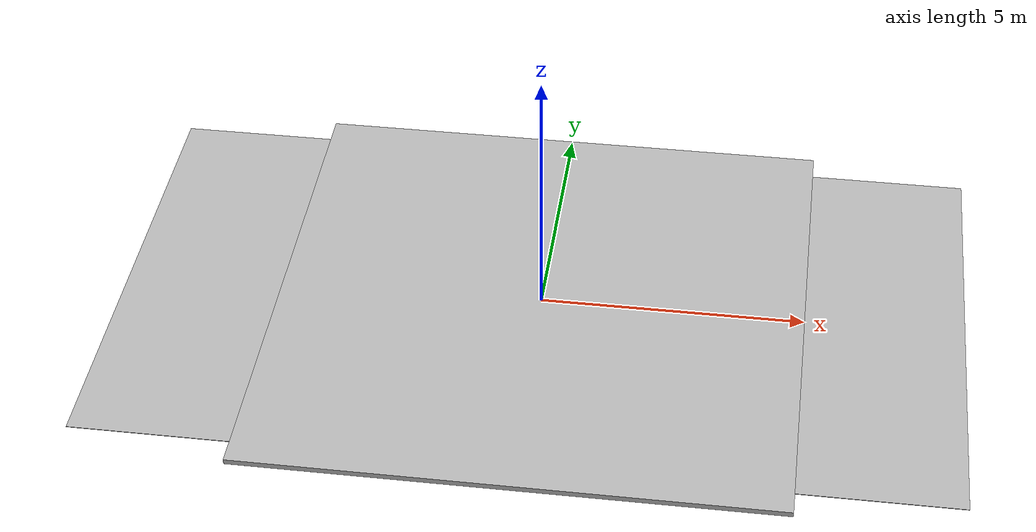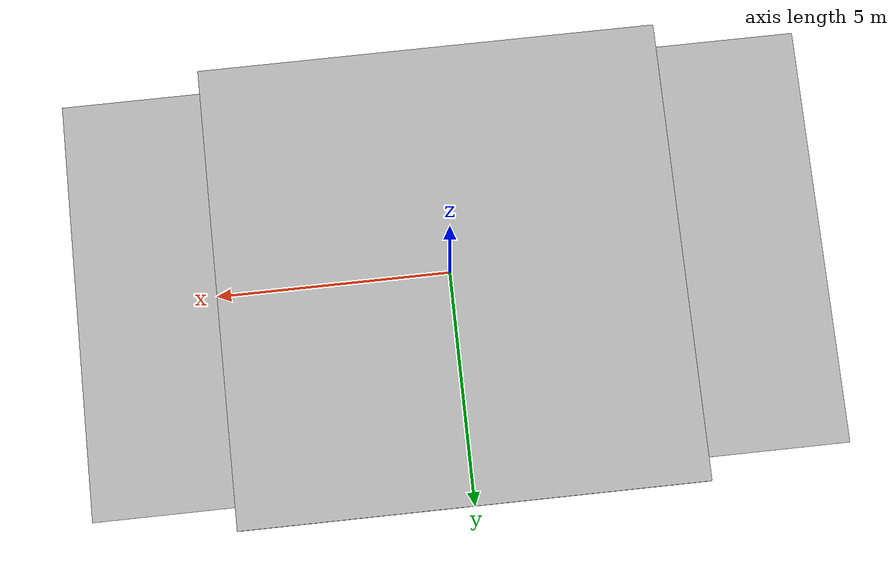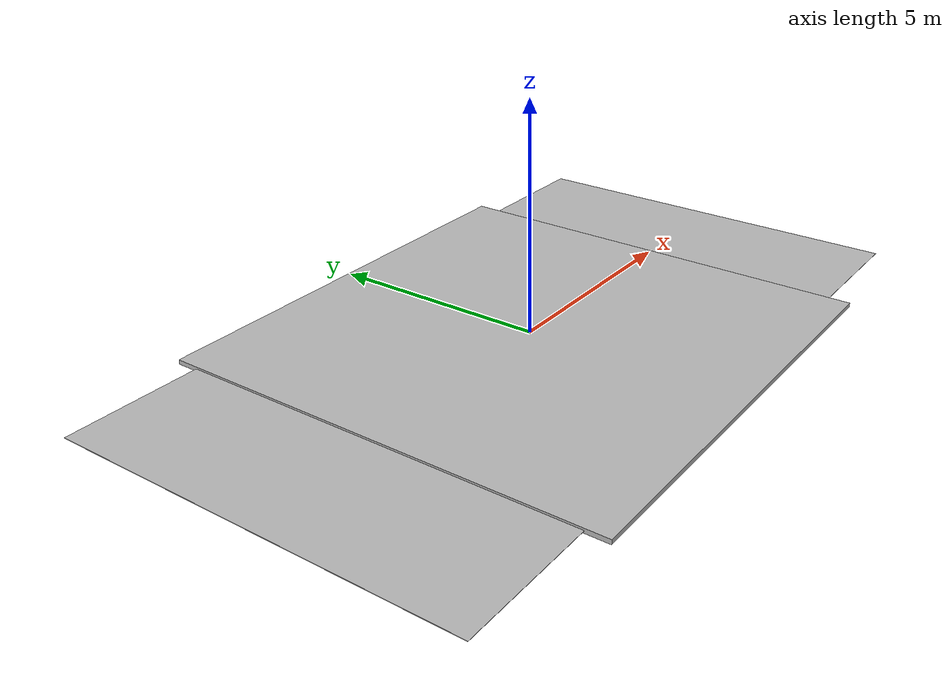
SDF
<?xml version="1.0" ?>
<sdf version="1.7">
  <world name="default_world">

    <plugin
      filename="gz-sim-physics-system"
      name="gz::sim::systems::Physics">
    </plugin>
    <plugin
      filename="gz-sim-user-commands-system"
      name="gz::sim::systems::UserCommands">
    </plugin>
    <plugin
      filename="gz-sim-scene-broadcaster-system"
      name="gz::sim::systems::SceneBroadcaster">
    </plugin>

    <physics type="ode">
      <max_step_size>0.001</max_step_size>
      <real_time_factor>1.0</real_time_factor>
    </physics>

    <light type="directional" name="sun">
      <cast_shadows>true</cast_shadows>
      <pose>0 0 10 0 0 0</pose>
      <diffuse>0.8 0.8 0.8 1.0</diffuse>
      <specular>0.2 0.2 0.2 1.0</specular>
      <direction>-0.5 0.1 -0.9</direction>
    </light>

    <model name="ground_plane">
      <static>true</static>
      <link name="link">
        <collision name="collision">
          <geometry>
            <plane>
              <normal>0 0 1</normal>
              <size>20 20</size> </plane>
          </geometry>
        </collision>

        <visual name="visual">
          <cast_shadows>false</cast_shadows>
          <geometry>
            <box>
              <size>10.0 10.0 0.1</size> <!-- Must match the aspect ratio of your image -->
            </box>
          </geometry>
        </visual>

      </link>
    </model>

    <model name="easy_image_ground">
      <static>true</static>
      <link name="link">

        <collision name="collision">
          <geometry>
            <!-- Set the size in meters (Width, Length, Thickness) -->
            <box><size>16.0 9.0 0.01</size></box>
          </geometry>
        </collision>

        <visual name="visual">
          <geometry>
            <!-- Match your image's aspect ratio here so it doesn't look stretched -->
            <box><size>16.0 9.0 0.01</size></box>
          </geometry>
          <material>
            <pbr>
              <metal>
                <!-- ─── JUST USE THE ABSOLUTE PATH TO YOUR IMAGE HERE ─── -->
                <albedo_map>/home/william/robocup-ros/ros/robot_core/media/textures/course.png</albedo_map>
                <roughness>0.7</roughness>
                <metalness>0.1</metalness>
              </metal>
            </pbr>
          </material>
        </visual>

      </link>
    </model>

  </world>
</sdf>
